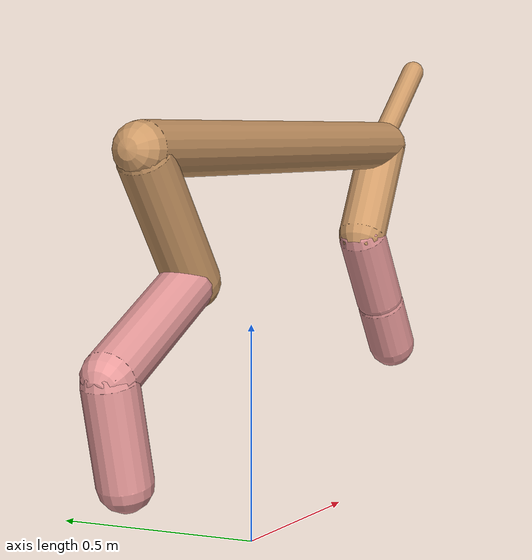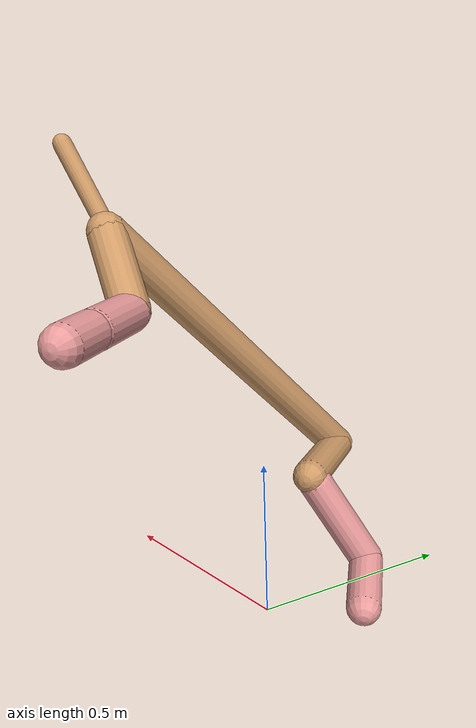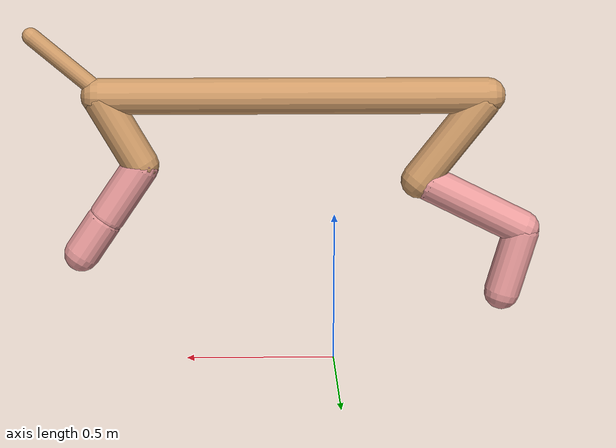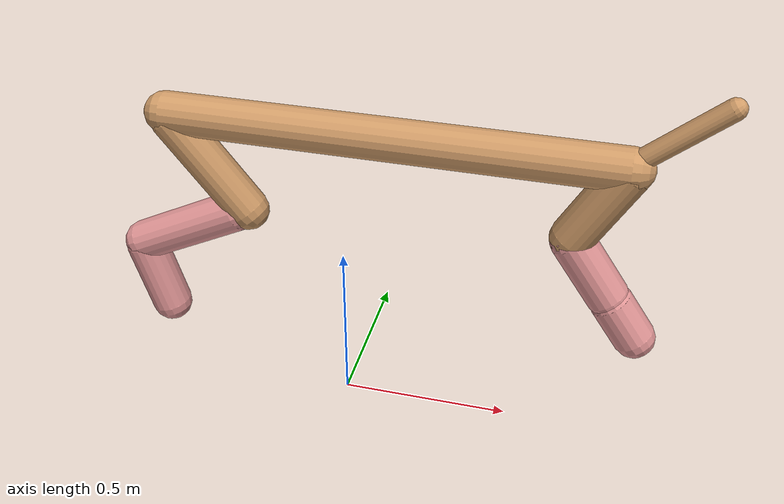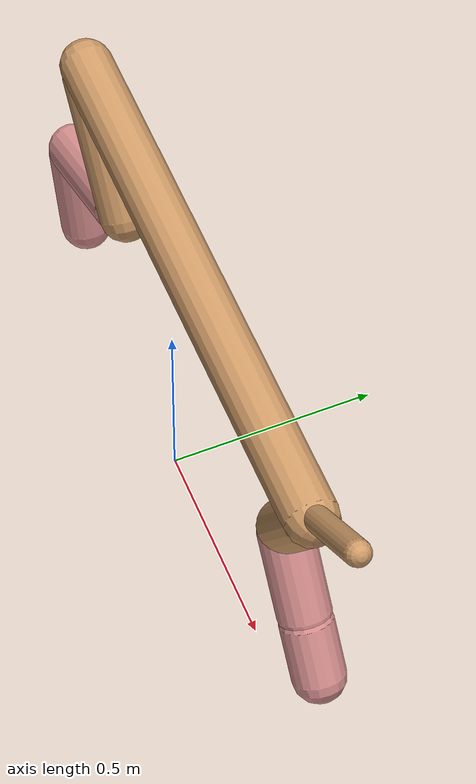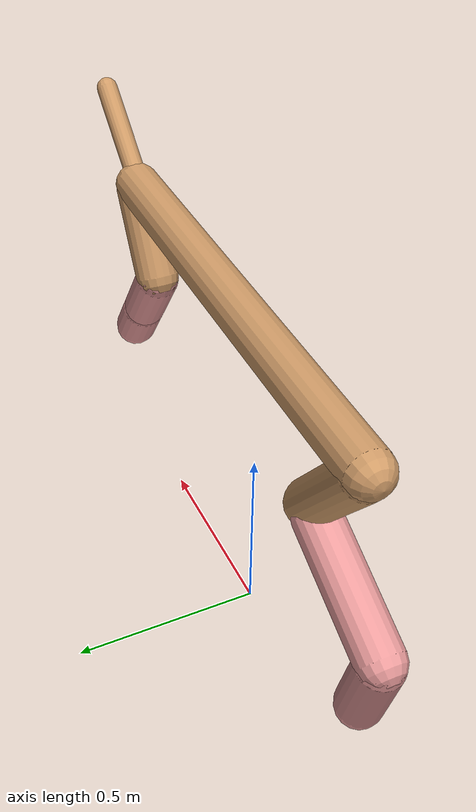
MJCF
<mujoco model="cheetah">
  <compiler angle="radian" coordinate="local" inertiafromgeom="true" settotalmass="14" />
  <default>
    <joint armature=".1" damping=".01" limited="true" solimplimit="0 .8 .03" solreflimit=".02 1" stiffness="8" />
    <geom conaffinity="0" condim="3" contype="1" friction="0.8 .1 .1" rgba="0.8 0.6 .4 1" solimp="0.0 0.8 0.01" solref="0.02 1" />
    <motor ctrllimited="true" ctrlrange="-1 1" />
  </default>
  <size nstack="300000" nuser_geom="1" />
  <option gravity="0 0 -9.81" timestep="0.01" />
  <worldbody>
    <body name="torso" pos="0.0 0.0 0.9026755855196305">
      <joint armature="0" axis="1 0 0" damping="0" limited="false" name="ignorex" pos="0 0 0" stiffness="0" type="slide" />
      <joint armature="0" axis="0 0 1" damping="0" limited="false" name="ignorez" pos="0 0 0" stiffness="0" type="slide" />
      <joint armature="0" axis="0 1 0" damping="0" limited="false" name="ignorey" pos="0 0 0" stiffness="0" type="hinge" />
      <geom fromto="-0.5 0.0 0.0 0.7744010866525203 0.0 0.0" name="torso" size="0.06057664099199181" type="capsule" />
      <geom axisangle="0 1 0 .87" name="head" pos="0.8744010866525204 0.0 0.1" size="0.028936101429688367 0.15" type="capsule" />

      <body name="bthigh" pos="-.5 0 0">
        <joint axis="0 1 0" damping="6" name="bthigh" pos="0 0 0" range="-.52 1.05" stiffness="240" type="hinge" />
        <geom axisangle="0 1 0 -3.8" name="bthigh" pos="0.11518487744971227 0.0 -0.14974034068462594" size="0.06043239355325118 0.16990505076300544" type="capsule" />
        <body name="bshin" pos="0.19036975489942454 0.0 -0.28948068136925187">
          <joint axis="0 1 0" damping="4.5" name="bshin" pos="0 0 0" range="-.785 .785" stiffness="180" type="hinge" />
          <geom axisangle="0 1 0 -2.03" name="bshin" pos="-0.16304388406448134 0.0 -0.08152194203224067" rgba="0.9 0.6 0.6 1" size="0.06043239355325118 0.17576384561690217" type="capsule" />
          <body name="bfoot" pos="-0.3260877681289627 0.0 -0.16304388406448134">
            <joint axis="0 1 0" damping="3" name="bfoot" pos="0 0 0" range="-.4 .785" stiffness="120" type="hinge" />
            <geom axisangle="0 1 0 -.27" name="bfoot" pos="0.03477046009752202 0.0 -0.11242448764865455" rgba="0.9 0.6 0.6 1" size="0.06043239355325118 0.1101453432532587" type="capsule" />
            <inertial mass="10" />
          </body>
        </body>
      </body>
      <body name="fthigh" pos="0.7744010866525204 0.0 0.0">
        <joint axis="0 1 0" damping="4.5" name="fthigh" pos="0 0 0" range="-1.5 0.8" stiffness="180" type="hinge" />
        <geom axisangle="0 1 0 .52" name="fthigh" pos="-0.06785706013985783 0.0 -0.11632638881118484" size="0.060523768592962365 0.1287470468600308" type="capsule" />
        <body name="fshin" pos="-0.13571412027971566 0.0 -0.2326527776223697">
          <joint axis="0 1 0" damping="3" name="fshin" pos="0 0 0" range="-1.2 1.1" stiffness="120" type="hinge" />
          <geom axisangle="0 1 0 -.6" name="fshin" pos="0.06301543780243732 0.0 -0.0872521446495286" rgba="0.9 0.6 0.6 1" size="0.060523768592962365 0.10261042832453582" type="capsule" />
          <body name="ffoot" pos="0.12603087560487464 0.0 -0.1745042892990572">
            <joint axis="0 1 0" damping="1.5" name="ffoot" pos="0 0 0" range="-3.1 -0.3" stiffness="60" type="hinge" />
            <geom axisangle="0 1 0 -.6" name="ffoot" pos="0.04378957016003214 0.0 -0.06811710913782777" rgba="0.9 0.6 0.6 1" size="0.060523768592962365 0.06776160361054252" type="capsule" />
            <inertial mass="10" />
          </body>
        </body>
      </body>
    </body>
  </worldbody>
  <actuator>
    <motor gear="120" joint="bthigh" name="bthigh" />
    <motor gear="90" joint="bshin" name="bshin" />
    <motor gear="60" joint="bfoot" name="bfoot" />
    <motor gear="120" joint="fthigh" name="fthigh" />
    <motor gear="60" joint="fshin" name="fshin" />
    <motor gear="30" joint="ffoot" name="ffoot" />
  </actuator>
</mujoco>
